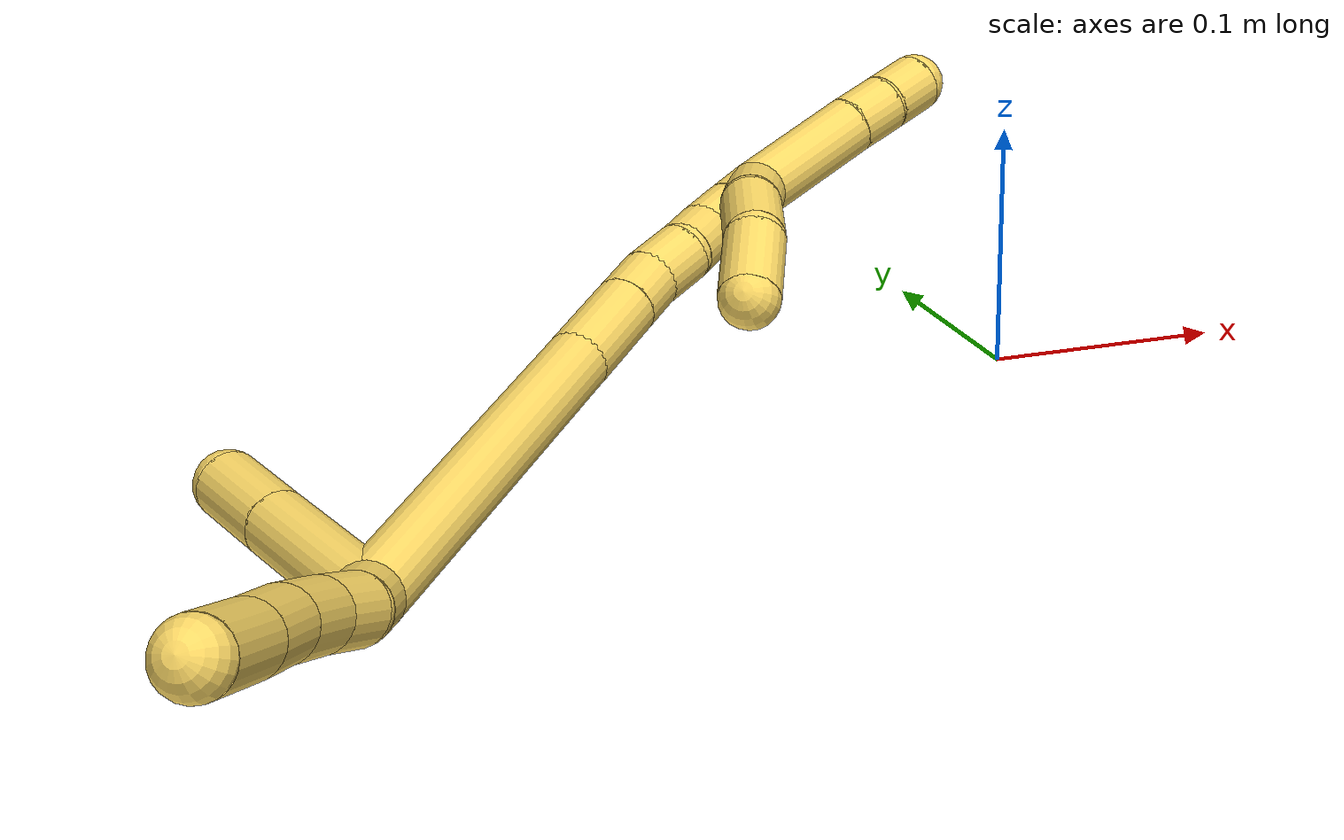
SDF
<sdf version="1.7">
 <world name="default">
  <model name="5">
   <static>0</static>
   <link name="5">
    <collision name="collision-cylinder-e_1_2_8">
     <pose>0.000566 -0.003072 0.009739 0.30557 0.055333 0.008523</pose>
     <geometry><cylinder><radius>0.0125</radius><length>0.020455</length></cylinder></geometry>
     <surface>
      <friction><ode><mu>1.16</mu><mu2>1.16</mu2><slip1>0</slip1><slip2>0</slip2></ode></friction>
      <contact><ode><kp>1e+06</kp><kd>1</kd><max_vel>0</max_vel><min_depth>0.001</min_depth></ode></contact>
     </surface>
    </collision>
    <visual name="visual-cylinder-e_1_2_8">
     <pose>0.000566 -0.003072 0.009739 0.30557 0.055333 0.008523</pose>
     <geometry><cylinder><radius>0.0125</radius><length>0.020455</length></cylinder></geometry>
     <material><ambient>1 0.858824 0.4 1</ambient></material>
    </visual>
    <collision name="collision-cylinder-e_2_8_9">
     <pose>-0.001052 -0.007465 0.031284 0.111443 -0.181714 -0.010164</pose>
     <geometry><cylinder><radius>0.0125</radius><length>0.024158</length></cylinder></geometry>
     <surface>
      <friction><ode><mu>1.16</mu><mu2>1.16</mu2><slip1>0</slip1><slip2>0</slip2></ode></friction>
      <contact><ode><kp>1e+06</kp><kd>1</kd><max_vel>0</max_vel><min_depth>0.001</min_depth></ode></contact>
     </surface>
    </collision>
    <visual name="visual-cylinder-e_2_8_9">
     <pose>-0.001052 -0.007465 0.031284 0.111443 -0.181714 -0.010164</pose>
     <geometry><cylinder><radius>0.0125</radius><length>0.024158</length></cylinder></geometry>
     <material><ambient>1 0.858824 0.4 1</ambient></material>
    </visual>
    <collision name="collision-cylinder-e_3_9_10">
     <pose>-0.003907 -0.011285 0.058633 0.159355 -0.04268 -0.003408</pose>
     <geometry><cylinder><radius>0.0125</radius><length>0.031514</length></cylinder></geometry>
     <surface>
      <friction><ode><mu>1.16</mu><mu2>1.16</mu2><slip1>0</slip1><slip2>0</slip2></ode></friction>
      <contact><ode><kp>1e+06</kp><kd>1</kd><max_vel>0</max_vel><min_depth>0.001</min_depth></ode></contact>
     </surface>
    </collision>
    <visual name="visual-cylinder-e_3_9_10">
     <pose>-0.003907 -0.011285 0.058633 0.159355 -0.04268 -0.003408</pose>
     <geometry><cylinder><radius>0.0125</radius><length>0.031514</length></cylinder></geometry>
     <material><ambient>1 0.858824 0.4 1</ambient></material>
    </visual>
    <collision name="collision-cylinder-e_4_10_11">
     <pose>-0.00428 -0.017375 0.090252 0.219856 0.018143 0.002003</pose>
     <geometry><cylinder><radius>0.0125</radius><length>0.03295</length></cylinder></geometry>
     <surface>
      <friction><ode><mu>1.16</mu><mu2>1.16</mu2><slip1>0</slip1><slip2>0</slip2></ode></friction>
      <contact><ode><kp>1e+06</kp><kd>1</kd><max_vel>0</max_vel><min_depth>0.001</min_depth></ode></contact>
     </surface>
    </collision>
    <visual name="visual-cylinder-e_4_10_11">
     <pose>-0.00428 -0.017375 0.090252 0.219856 0.018143 0.002003</pose>
     <geometry><cylinder><radius>0.0125</radius><length>0.03295</length></cylinder></geometry>
     <material><ambient>1 0.858824 0.4 1</ambient></material>
    </visual>
    <collision name="collision-cylinder-e_5_11_6">
     <pose>-0.003788 -0.024874 0.126412 0.192122 0.00946 0.000912</pose>
     <geometry><cylinder><radius>0.0125</radius><length>0.040923</length></cylinder></geometry>
     <surface>
      <friction><ode><mu>1.16</mu><mu2>1.16</mu2><slip1>0</slip1><slip2>0</slip2></ode></friction>
      <contact><ode><kp>1e+06</kp><kd>1</kd><max_vel>0</max_vel><min_depth>0.001</min_depth></ode></contact>
     </surface>
    </collision>
    <visual name="visual-cylinder-e_5_11_6">
     <pose>-0.003788 -0.024874 0.126412 0.192122 0.00946 0.000912</pose>
     <geometry><cylinder><radius>0.0125</radius><length>0.040923</length></cylinder></geometry>
     <material><ambient>1 0.858824 0.4 1</ambient></material>
    </visual>
    <collision name="collision-cylinder-e_1_2_12">
     <pose>-0.01829 0.0191 -0.016773 -2.29141 -0.62373 1.23766</pose>
     <geometry><cylinder><radius>0.0125</radius><length>0.062631</length></cylinder></geometry>
     <surface>
      <friction><ode><mu>1.16</mu><mu2>1.16</mu2><slip1>0</slip1><slip2>0</slip2></ode></friction>
      <contact><ode><kp>1e+06</kp><kd>1</kd><max_vel>0</max_vel><min_depth>0.001</min_depth></ode></contact>
     </surface>
    </collision>
    <visual name="visual-cylinder-e_1_2_12">
     <pose>-0.01829 0.0191 -0.016773 -2.29141 -0.62373 1.23766</pose>
     <geometry><cylinder><radius>0.0125</radius><length>0.062631</length></cylinder></geometry>
     <material><ambient>1 0.858824 0.4 1</ambient></material>
    </visual>
    <collision name="collision-cylinder-e_2_12_5">
     <pose>-0.047404 0.049665 -0.043571 -2.2893 -0.617827 1.22545</pose>
     <geometry><cylinder><radius>0.0125</radius><length>0.037369</length></cylinder></geometry>
     <surface>
      <friction><ode><mu>1.16</mu><mu2>1.16</mu2><slip1>0</slip1><slip2>0</slip2></ode></friction>
      <contact><ode><kp>1e+06</kp><kd>1</kd><max_vel>0</max_vel><min_depth>0.001</min_depth></ode></contact>
     </surface>
    </collision>
    <visual name="visual-cylinder-e_2_12_5">
     <pose>-0.047404 0.049665 -0.043571 -2.2893 -0.617827 1.22545</pose>
     <geometry><cylinder><radius>0.0125</radius><length>0.037369</length></cylinder></geometry>
     <material><ambient>1 0.858824 0.4 1</ambient></material>
    </visual>
    <collision name="collision-cylinder-e_1_2_13">
     <pose>0.029778 0.042512 -0.058911 -2.51649 0.38901 -1.09493</pose>
     <geometry><cylinder><radius>0.0125</radius><length>0.157029</length></cylinder></geometry>
     <surface>
      <friction><ode><mu>1.16</mu><mu2>1.16</mu2><slip1>0</slip1><slip2>0</slip2></ode></friction>
      <contact><ode><kp>1e+06</kp><kd>1</kd><max_vel>0</max_vel><min_depth>0.001</min_depth></ode></contact>
     </surface>
    </collision>
    <visual name="visual-cylinder-e_1_2_13">
     <pose>0.029778 0.042512 -0.058911 -2.51649 0.38901 -1.09493</pose>
     <geometry><cylinder><radius>0.0125</radius><length>0.157029</length></cylinder></geometry>
     <material><ambient>1 0.858824 0.4 1</ambient></material>
    </visual>
    <collision name="collision-cylinder-e_2_13_14">
     <pose>0.068386 0.096256 -0.131534 -2.45531 0.46215 -1.1647</pose>
     <geometry><cylinder><radius>0.0125</radius><length>0.039604</length></cylinder></geometry>
     <surface>
      <friction><ode><mu>1.16</mu><mu2>1.16</mu2><slip1>0</slip1><slip2>0</slip2></ode></friction>
      <contact><ode><kp>1e+06</kp><kd>1</kd><max_vel>0</max_vel><min_depth>0.001</min_depth></ode></contact>
     </surface>
    </collision>
    <visual name="visual-cylinder-e_2_13_14">
     <pose>0.068386 0.096256 -0.131534 -2.45531 0.46215 -1.1647</pose>
     <geometry><cylinder><radius>0.0125</radius><length>0.039604</length></cylinder></geometry>
     <material><ambient>1 0.858824 0.4 1</ambient></material>
    </visual>
    <collision name="collision-cylinder-e_3_14_15">
     <pose>0.081858 0.113389 -0.152573 -2.46359 0.458409 -1.16903</pose>
     <geometry><cylinder><radius>0.0125</radius><length>0.020981</length></cylinder></geometry>
     <surface>
      <friction><ode><mu>1.16</mu><mu2>1.16</mu2><slip1>0</slip1><slip2>0</slip2></ode></friction>
      <contact><ode><kp>1e+06</kp><kd>1</kd><max_vel>0</max_vel><min_depth>0.001</min_depth></ode></contact>
     </surface>
    </collision>
    <visual name="visual-cylinder-e_3_14_15">
     <pose>0.081858 0.113389 -0.152573 -2.46359 0.458409 -1.16903</pose>
     <geometry><cylinder><radius>0.0125</radius><length>0.020981</length></cylinder></geometry>
     <material><ambient>1 0.858824 0.4 1</ambient></material>
    </visual>
    <collision name="collision-cylinder-e_4_15_16">
     <pose>0.093254 0.124503 -0.166679 -2.48601 0.668393 -1.59163</pose>
     <geometry><cylinder><radius>0.0125</radius><length>0.021796</length></cylinder></geometry>
     <surface>
      <friction><ode><mu>1.16</mu><mu2>1.16</mu2><slip1>0</slip1><slip2>0</slip2></ode></friction>
      <contact><ode><kp>1e+06</kp><kd>1</kd><max_vel>0</max_vel><min_depth>0.001</min_depth></ode></contact>
     </surface>
    </collision>
    <visual name="visual-cylinder-e_4_15_16">
     <pose>0.093254 0.124503 -0.166679 -2.48601 0.668393 -1.59163</pose>
     <geometry><cylinder><radius>0.0125</radius><length>0.021796</length></cylinder></geometry>
     <material><ambient>1 0.858824 0.4 1</ambient></material>
    </visual>
    <collision name="collision-cylinder-e_5_16_17">
     <pose>0.103848 0.134672 -0.181591 -2.5944 0.383384 -1.21008</pose>
     <geometry><cylinder><radius>0.0125</radius><length>0.020537</length></cylinder></geometry>
     <surface>
      <friction><ode><mu>1.16</mu><mu2>1.16</mu2><slip1>0</slip1><slip2>0</slip2></ode></friction>
      <contact><ode><kp>1e+06</kp><kd>1</kd><max_vel>0</max_vel><min_depth>0.001</min_depth></ode></contact>
     </surface>
    </collision>
    <visual name="visual-cylinder-e_5_16_17">
     <pose>0.103848 0.134672 -0.181591 -2.5944 0.383384 -1.21008</pose>
     <geometry><cylinder><radius>0.0125</radius><length>0.020537</length></cylinder></geometry>
     <material><ambient>1 0.858824 0.4 1</ambient></material>
    </visual>
    <collision name="collision-cylinder-e_6_17_18">
     <pose>0.113337 0.144512 -0.196409 -2.51046 0.59864 -1.51449</pose>
     <geometry><cylinder><radius>0.0125</radius><length>0.020046</length></cylinder></geometry>
     <surface>
      <friction><ode><mu>1.16</mu><mu2>1.16</mu2><slip1>0</slip1><slip2>0</slip2></ode></friction>
      <contact><ode><kp>1e+06</kp><kd>1</kd><max_vel>0</max_vel><min_depth>0.001</min_depth></ode></contact>
     </surface>
    </collision>
    <visual name="visual-cylinder-e_6_17_18">
     <pose>0.113337 0.144512 -0.196409 -2.51046 0.59864 -1.51449</pose>
     <geometry><cylinder><radius>0.0125</radius><length>0.020046</length></cylinder></geometry>
     <material><ambient>1 0.858824 0.4 1</ambient></material>
    </visual>
    <collision name="collision-cylinder-e_7_18_1">
     <pose>0.124173 0.154108 -0.210233 -2.55839 0.545141 -1.49964</pose>
     <geometry><cylinder><radius>0.0125</radius><length>0.020007</length></cylinder></geometry>
     <surface>
      <friction><ode><mu>1.16</mu><mu2>1.16</mu2><slip1>0</slip1><slip2>0</slip2></ode></friction>
      <contact><ode><kp>1e+06</kp><kd>1</kd><max_vel>0</max_vel><min_depth>0.001</min_depth></ode></contact>
     </surface>
    </collision>
    <visual name="visual-cylinder-e_7_18_1">
     <pose>0.124173 0.154108 -0.210233 -2.55839 0.545141 -1.49964</pose>
     <geometry><cylinder><radius>0.0125</radius><length>0.020007</length></cylinder></geometry>
     <material><ambient>1 0.858824 0.4 1</ambient></material>
    </visual>
    <collision name="collision-cylinder-e_1_1_19">
     <pose>0.129347 0.151774 -0.202395 0.439659 -0.000811 -0.000181</pose>
     <geometry><cylinder><radius>0.0125</radius><length>0.033105</length></cylinder></geometry>
     <surface>
      <friction><ode><mu>1.16</mu><mu2>1.16</mu2><slip1>0</slip1><slip2>0</slip2></ode></friction>
      <contact><ode><kp>1e+06</kp><kd>1</kd><max_vel>0</max_vel><min_depth>0.001</min_depth></ode></contact>
     </surface>
    </collision>
    <visual name="visual-cylinder-e_1_1_19">
     <pose>0.129347 0.151774 -0.202395 0.439659 -0.000811 -0.000181</pose>
     <geometry><cylinder><radius>0.0125</radius><length>0.033105</length></cylinder></geometry>
     <material><ambient>1 0.858824 0.4 1</ambient></material>
    </visual>
    <collision name="collision-cylinder-e_2_19_20">
     <pose>0.129951 0.133983 -0.174322 0.687188 0.036429 0.013035</pose>
     <geometry><cylinder><radius>0.0125</radius><length>0.033901</length></cylinder></geometry>
     <surface>
      <friction><ode><mu>1.16</mu><mu2>1.16</mu2><slip1>0</slip1><slip2>0</slip2></ode></friction>
      <contact><ode><kp>1e+06</kp><kd>1</kd><max_vel>0</max_vel><min_depth>0.001</min_depth></ode></contact>
     </surface>
    </collision>
    <visual name="visual-cylinder-e_2_19_20">
     <pose>0.129951 0.133983 -0.174322 0.687188 0.036429 0.013035</pose>
     <geometry><cylinder><radius>0.0125</radius><length>0.033901</length></cylinder></geometry>
     <material><ambient>1 0.858824 0.4 1</ambient></material>
    </visual>
    <collision name="collision-cylinder-e_3_20_4">
     <pose>0.127883 0.10985 -0.151968 0.96566 -0.163491 -0.085843</pose>
     <geometry><cylinder><radius>0.0125</radius><length>0.032994</length></cylinder></geometry>
     <surface>
      <friction><ode><mu>1.16</mu><mu2>1.16</mu2><slip1>0</slip1><slip2>0</slip2></ode></friction>
      <contact><ode><kp>1e+06</kp><kd>1</kd><max_vel>0</max_vel><min_depth>0.001</min_depth></ode></contact>
     </surface>
    </collision>
    <visual name="visual-cylinder-e_3_20_4">
     <pose>0.127883 0.10985 -0.151968 0.96566 -0.163491 -0.085843</pose>
     <geometry><cylinder><radius>0.0125</radius><length>0.032994</length></cylinder></geometry>
     <material><ambient>1 0.858824 0.4 1</ambient></material>
    </visual>
    <collision name="collision-cylinder-e_1_1_21">
     <pose>0.150688 0.171002 -0.231102 -2.41578 0.860189 -1.75871</pose>
     <geometry><cylinder><radius>0.0125</radius><length>0.056278</length></cylinder></geometry>
     <surface>
      <friction><ode><mu>1.16</mu><mu2>1.16</mu2><slip1>0</slip1><slip2>0</slip2></ode></friction>
      <contact><ode><kp>1e+06</kp><kd>1</kd><max_vel>0</max_vel><min_depth>0.001</min_depth></ode></contact>
     </surface>
    </collision>
    <visual name="visual-cylinder-e_1_1_21">
     <pose>0.150688 0.171002 -0.231102 -2.41578 0.860189 -1.75871</pose>
     <geometry><cylinder><radius>0.0125</radius><length>0.056278</length></cylinder></geometry>
     <material><ambient>1 0.858824 0.4 1</ambient></material>
    </visual>
    <collision name="collision-cylinder-e_2_21_22">
     <pose>0.17993 0.187563 -0.250553 -2.48846 0.832226 -1.83374</pose>
     <geometry><cylinder><radius>0.0125</radius><length>0.021405</length></cylinder></geometry>
     <surface>
      <friction><ode><mu>1.16</mu><mu2>1.16</mu2><slip1>0</slip1><slip2>0</slip2></ode></friction>
      <contact><ode><kp>1e+06</kp><kd>1</kd><max_vel>0</max_vel><min_depth>0.001</min_depth></ode></contact>
     </surface>
    </collision>
    <visual name="visual-cylinder-e_2_21_22">
     <pose>0.17993 0.187563 -0.250553 -2.48846 0.832226 -1.83374</pose>
     <geometry><cylinder><radius>0.0125</radius><length>0.021405</length></cylinder></geometry>
     <material><ambient>1 0.858824 0.4 1</ambient></material>
    </visual>
    <collision name="collision-cylinder-e_3_22_3">
     <pose>0.195121 0.19662 -0.263323 -2.55565 0.710385 -1.77607</pose>
     <geometry><cylinder><radius>0.0125</radius><length>0.022317</length></cylinder></geometry>
     <surface>
      <friction><ode><mu>1.16</mu><mu2>1.16</mu2><slip1>0</slip1><slip2>0</slip2></ode></friction>
      <contact><ode><kp>1e+06</kp><kd>1</kd><max_vel>0</max_vel><min_depth>0.001</min_depth></ode></contact>
     </surface>
    </collision>
    <visual name="visual-cylinder-e_3_22_3">
     <pose>0.195121 0.19662 -0.263323 -2.55565 0.710385 -1.77607</pose>
     <geometry><cylinder><radius>0.0125</radius><length>0.022317</length></cylinder></geometry>
     <material><ambient>1 0.858824 0.4 1</ambient></material>
    </visual>
    <collision name="collision-sphere-3">
     <pose>0.202398 0.201298 -0.270372 0 -0 0</pose>
     <geometry><sphere><radius>0.0125</radius></sphere></geometry>
     <surface>
      <friction><ode><mu>1.16</mu><mu2>1.16</mu2><slip1>0</slip1><slip2>0</slip2></ode></friction>
      <contact><ode><kp>1e+06</kp><kd>1</kd><max_vel>0</max_vel><min_depth>0.001</min_depth></ode></contact>
     </surface>
    </collision>
    <visual name="visual-sphere-3">
     <pose>0.202398 0.201298 -0.270372 0 -0 0</pose>
     <geometry><sphere><radius>0.0125</radius></sphere></geometry>
     <material><ambient>1 0.858824 0.4 1</ambient></material>
    </visual>
    <collision name="collision-sphere-22">
     <pose>0.187844 0.191942 -0.256275 0 -0 0</pose>
     <geometry><sphere><radius>0.0125</radius></sphere></geometry>
     <surface>
      <friction><ode><mu>1.16</mu><mu2>1.16</mu2><slip1>0</slip1><slip2>0</slip2></ode></friction>
      <contact><ode><kp>1e+06</kp><kd>1</kd><max_vel>0</max_vel><min_depth>0.001</min_depth></ode></contact>
     </surface>
    </collision>
    <visual name="visual-sphere-22">
     <pose>0.187844 0.191942 -0.256275 0 -0 0</pose>
     <geometry><sphere><radius>0.0125</radius></sphere></geometry>
     <material><ambient>1 0.858824 0.4 1</ambient></material>
    </visual>
    <collision name="collision-sphere-21">
     <pose>0.172017 0.183185 -0.244831 0 -0 0</pose>
     <geometry><sphere><radius>0.0125</radius></sphere></geometry>
     <surface>
      <friction><ode><mu>1.16</mu><mu2>1.16</mu2><slip1>0</slip1><slip2>0</slip2></ode></friction>
      <contact><ode><kp>1e+06</kp><kd>1</kd><max_vel>0</max_vel><min_depth>0.001</min_depth></ode></contact>
     </surface>
    </collision>
    <visual name="visual-sphere-21">
     <pose>0.172017 0.183185 -0.244831 0 -0 0</pose>
     <geometry><sphere><radius>0.0125</radius></sphere></geometry>
     <material><ambient>1 0.858824 0.4 1</ambient></material>
    </visual>
    <collision name="collision-sphere-4">
     <pose>0.125198 0.096464 -0.142708 0 -0 0</pose>
     <geometry><sphere><radius>0.0125</radius></sphere></geometry>
     <surface>
      <friction><ode><mu>1.16</mu><mu2>1.16</mu2><slip1>0</slip1><slip2>0</slip2></ode></friction>
      <contact><ode><kp>1e+06</kp><kd>1</kd><max_vel>0</max_vel><min_depth>0.001</min_depth></ode></contact>
     </surface>
    </collision>
    <visual name="visual-sphere-4">
     <pose>0.125198 0.096464 -0.142708 0 -0 0</pose>
     <geometry><sphere><radius>0.0125</radius></sphere></geometry>
     <material><ambient>1 0.858824 0.4 1</ambient></material>
    </visual>
    <collision name="collision-sphere-20">
     <pose>0.130568 0.123237 -0.161227 0 -0 0</pose>
     <geometry><sphere><radius>0.0125</radius></sphere></geometry>
     <surface>
      <friction><ode><mu>1.16</mu><mu2>1.16</mu2><slip1>0</slip1><slip2>0</slip2></ode></friction>
      <contact><ode><kp>1e+06</kp><kd>1</kd><max_vel>0</max_vel><min_depth>0.001</min_depth></ode></contact>
     </surface>
    </collision>
    <visual name="visual-sphere-20">
     <pose>0.130568 0.123237 -0.161227 0 -0 0</pose>
     <geometry><sphere><radius>0.0125</radius></sphere></geometry>
     <material><ambient>1 0.858824 0.4 1</ambient></material>
    </visual>
    <collision name="collision-sphere-6">
     <pose>-0.003594 -0.028781 0.146497 0 -0 0</pose>
     <geometry><sphere><radius>0.0125</radius></sphere></geometry>
     <surface>
      <friction><ode><mu>1.16</mu><mu2>1.16</mu2><slip1>0</slip1><slip2>0</slip2></ode></friction>
      <contact><ode><kp>1e+06</kp><kd>1</kd><max_vel>0</max_vel><min_depth>0.001</min_depth></ode></contact>
     </surface>
    </collision>
    <visual name="visual-sphere-6">
     <pose>-0.003594 -0.028781 0.146497 0 -0 0</pose>
     <geometry><sphere><radius>0.0125</radius></sphere></geometry>
     <material><ambient>1 0.858824 0.4 1</ambient></material>
    </visual>
    <collision name="collision-sphere-11">
     <pose>-0.003981 -0.020968 0.106328 0 -0 0</pose>
     <geometry><sphere><radius>0.0125</radius></sphere></geometry>
     <surface>
      <friction><ode><mu>1.16</mu><mu2>1.16</mu2><slip1>0</slip1><slip2>0</slip2></ode></friction>
      <contact><ode><kp>1e+06</kp><kd>1</kd><max_vel>0</max_vel><min_depth>0.001</min_depth></ode></contact>
     </surface>
    </collision>
    <visual name="visual-sphere-11">
     <pose>-0.003981 -0.020968 0.106328 0 -0 0</pose>
     <geometry><sphere><radius>0.0125</radius></sphere></geometry>
     <material><ambient>1 0.858824 0.4 1</ambient></material>
    </visual>
    <collision name="collision-sphere-10">
     <pose>-0.004579 -0.013783 0.074176 0 -0 0</pose>
     <geometry><sphere><radius>0.0125</radius></sphere></geometry>
     <surface>
      <friction><ode><mu>1.16</mu><mu2>1.16</mu2><slip1>0</slip1><slip2>0</slip2></ode></friction>
      <contact><ode><kp>1e+06</kp><kd>1</kd><max_vel>0</max_vel><min_depth>0.001</min_depth></ode></contact>
     </surface>
    </collision>
    <visual name="visual-sphere-10">
     <pose>-0.004579 -0.013783 0.074176 0 -0 0</pose>
     <geometry><sphere><radius>0.0125</radius></sphere></geometry>
     <material><ambient>1 0.858824 0.4 1</ambient></material>
    </visual>
    <collision name="collision-sphere-9">
     <pose>-0.003234 -0.008787 0.04309 0 -0 0</pose>
     <geometry><sphere><radius>0.0125</radius></sphere></geometry>
     <surface>
      <friction><ode><mu>1.16</mu><mu2>1.16</mu2><slip1>0</slip1><slip2>0</slip2></ode></friction>
      <contact><ode><kp>1e+06</kp><kd>1</kd><max_vel>0</max_vel><min_depth>0.001</min_depth></ode></contact>
     </surface>
    </collision>
    <visual name="visual-sphere-9">
     <pose>-0.003234 -0.008787 0.04309 0 -0 0</pose>
     <geometry><sphere><radius>0.0125</radius></sphere></geometry>
     <material><ambient>1 0.858824 0.4 1</ambient></material>
    </visual>
    <collision name="collision-sphere-2">
     <geometry><sphere><radius>0.0125</radius></sphere></geometry>
     <surface>
      <friction><ode><mu>1.16</mu><mu2>1.16</mu2><slip1>0</slip1><slip2>0</slip2></ode></friction>
      <contact><ode><kp>1e+06</kp><kd>1</kd><max_vel>0</max_vel><min_depth>0.001</min_depth></ode></contact>
     </surface>
    </collision>
    <visual name="visual-sphere-2">
     <geometry><sphere><radius>0.0125</radius></sphere></geometry>
     <material><ambient>1 0.858824 0.4 1</ambient></material>
    </visual>
    <collision name="collision-sphere-19">
     <pose>0.129333 0.144729 -0.187417 0 -0 0</pose>
     <geometry><sphere><radius>0.0125</radius></sphere></geometry>
     <surface>
      <friction><ode><mu>1.16</mu><mu2>1.16</mu2><slip1>0</slip1><slip2>0</slip2></ode></friction>
      <contact><ode><kp>1e+06</kp><kd>1</kd><max_vel>0</max_vel><min_depth>0.001</min_depth></ode></contact>
     </surface>
    </collision>
    <visual name="visual-sphere-19">
     <pose>0.129333 0.144729 -0.187417 0 -0 0</pose>
     <geometry><sphere><radius>0.0125</radius></sphere></geometry>
     <material><ambient>1 0.858824 0.4 1</ambient></material>
    </visual>
    <collision name="collision-sphere-8">
     <pose>0.001131 -0.006144 0.019477 0 -0 0</pose>
     <geometry><sphere><radius>0.0125</radius></sphere></geometry>
     <surface>
      <friction><ode><mu>1.16</mu><mu2>1.16</mu2><slip1>0</slip1><slip2>0</slip2></ode></friction>
      <contact><ode><kp>1e+06</kp><kd>1</kd><max_vel>0</max_vel><min_depth>0.001</min_depth></ode></contact>
     </surface>
    </collision>
    <visual name="visual-sphere-8">
     <pose>0.001131 -0.006144 0.019477 0 -0 0</pose>
     <geometry><sphere><radius>0.0125</radius></sphere></geometry>
     <material><ambient>1 0.858824 0.4 1</ambient></material>
    </visual>
    <collision name="collision-sphere-12">
     <pose>-0.036581 0.0382 -0.033545 0 -0 0</pose>
     <geometry><sphere><radius>0.0125</radius></sphere></geometry>
     <surface>
      <friction><ode><mu>1.16</mu><mu2>1.16</mu2><slip1>0</slip1><slip2>0</slip2></ode></friction>
      <contact><ode><kp>1e+06</kp><kd>1</kd><max_vel>0</max_vel><min_depth>0.001</min_depth></ode></contact>
     </surface>
    </collision>
    <visual name="visual-sphere-12">
     <pose>-0.036581 0.0382 -0.033545 0 -0 0</pose>
     <geometry><sphere><radius>0.0125</radius></sphere></geometry>
     <material><ambient>1 0.858824 0.4 1</ambient></material>
    </visual>
    <collision name="collision-sphere-5">
     <pose>-0.058227 0.061131 -0.053596 0 -0 0</pose>
     <geometry><sphere><radius>0.0125</radius></sphere></geometry>
     <surface>
      <friction><ode><mu>1.16</mu><mu2>1.16</mu2><slip1>0</slip1><slip2>0</slip2></ode></friction>
      <contact><ode><kp>1e+06</kp><kd>1</kd><max_vel>0</max_vel><min_depth>0.001</min_depth></ode></contact>
     </surface>
    </collision>
    <visual name="visual-sphere-5">
     <pose>-0.058227 0.061131 -0.053596 0 -0 0</pose>
     <geometry><sphere><radius>0.0125</radius></sphere></geometry>
     <material><ambient>1 0.858824 0.4 1</ambient></material>
    </visual>
    <collision name="collision-sphere-13">
     <pose>0.059557 0.085025 -0.117822 0 -0 0</pose>
     <geometry><sphere><radius>0.0125</radius></sphere></geometry>
     <surface>
      <friction><ode><mu>1.16</mu><mu2>1.16</mu2><slip1>0</slip1><slip2>0</slip2></ode></friction>
      <contact><ode><kp>1e+06</kp><kd>1</kd><max_vel>0</max_vel><min_depth>0.001</min_depth></ode></contact>
     </surface>
    </collision>
    <visual name="visual-sphere-13">
     <pose>0.059557 0.085025 -0.117822 0 -0 0</pose>
     <geometry><sphere><radius>0.0125</radius></sphere></geometry>
     <material><ambient>1 0.858824 0.4 1</ambient></material>
    </visual>
    <collision name="collision-sphere-14">
     <pose>0.077216 0.107488 -0.145246 0 -0 0</pose>
     <geometry><sphere><radius>0.0125</radius></sphere></geometry>
     <surface>
      <friction><ode><mu>1.16</mu><mu2>1.16</mu2><slip1>0</slip1><slip2>0</slip2></ode></friction>
      <contact><ode><kp>1e+06</kp><kd>1</kd><max_vel>0</max_vel><min_depth>0.001</min_depth></ode></contact>
     </surface>
    </collision>
    <visual name="visual-sphere-14">
     <pose>0.077216 0.107488 -0.145246 0 -0 0</pose>
     <geometry><sphere><radius>0.0125</radius></sphere></geometry>
     <material><ambient>1 0.858824 0.4 1</ambient></material>
    </visual>
    <collision name="collision-sphere-15">
     <pose>0.0865 0.119289 -0.159899 0 -0 0</pose>
     <geometry><sphere><radius>0.0125</radius></sphere></geometry>
     <surface>
      <friction><ode><mu>1.16</mu><mu2>1.16</mu2><slip1>0</slip1><slip2>0</slip2></ode></friction>
      <contact><ode><kp>1e+06</kp><kd>1</kd><max_vel>0</max_vel><min_depth>0.001</min_depth></ode></contact>
     </surface>
    </collision>
    <visual name="visual-sphere-15">
     <pose>0.0865 0.119289 -0.159899 0 -0 0</pose>
     <geometry><sphere><radius>0.0125</radius></sphere></geometry>
     <material><ambient>1 0.858824 0.4 1</ambient></material>
    </visual>
    <collision name="collision-sphere-16">
     <pose>0.100007 0.129717 -0.173459 0 -0 0</pose>
     <geometry><sphere><radius>0.0125</radius></sphere></geometry>
     <surface>
      <friction><ode><mu>1.16</mu><mu2>1.16</mu2><slip1>0</slip1><slip2>0</slip2></ode></friction>
      <contact><ode><kp>1e+06</kp><kd>1</kd><max_vel>0</max_vel><min_depth>0.001</min_depth></ode></contact>
     </surface>
    </collision>
    <visual name="visual-sphere-16">
     <pose>0.100007 0.129717 -0.173459 0 -0 0</pose>
     <geometry><sphere><radius>0.0125</radius></sphere></geometry>
     <material><ambient>1 0.858824 0.4 1</ambient></material>
    </visual>
    <collision name="collision-sphere-17">
     <pose>0.107689 0.139626 -0.189724 0 -0 0</pose>
     <geometry><sphere><radius>0.0125</radius></sphere></geometry>
     <surface>
      <friction><ode><mu>1.16</mu><mu2>1.16</mu2><slip1>0</slip1><slip2>0</slip2></ode></friction>
      <contact><ode><kp>1e+06</kp><kd>1</kd><max_vel>0</max_vel><min_depth>0.001</min_depth></ode></contact>
     </surface>
    </collision>
    <visual name="visual-sphere-17">
     <pose>0.107689 0.139626 -0.189724 0 -0 0</pose>
     <geometry><sphere><radius>0.0125</radius></sphere></geometry>
     <material><ambient>1 0.858824 0.4 1</ambient></material>
    </visual>
    <collision name="collision-sphere-18">
     <pose>0.118986 0.149398 -0.203094 0 -0 0</pose>
     <geometry><sphere><radius>0.0125</radius></sphere></geometry>
     <surface>
      <friction><ode><mu>1.16</mu><mu2>1.16</mu2><slip1>0</slip1><slip2>0</slip2></ode></friction>
      <contact><ode><kp>1e+06</kp><kd>1</kd><max_vel>0</max_vel><min_depth>0.001</min_depth></ode></contact>
     </surface>
    </collision>
    <visual name="visual-sphere-18">
     <pose>0.118986 0.149398 -0.203094 0 -0 0</pose>
     <geometry><sphere><radius>0.0125</radius></sphere></geometry>
     <material><ambient>1 0.858824 0.4 1</ambient></material>
    </visual>
    <collision name="collision-sphere-1">
     <pose>0.12936 0.158819 -0.217373 0 -0 0</pose>
     <geometry><sphere><radius>0.0125</radius></sphere></geometry>
     <surface>
      <friction><ode><mu>1.16</mu><mu2>1.16</mu2><slip1>0</slip1><slip2>0</slip2></ode></friction>
      <contact><ode><kp>1e+06</kp><kd>1</kd><max_vel>0</max_vel><min_depth>0.001</min_depth></ode></contact>
     </surface>
    </collision>
    <visual name="visual-sphere-1">
     <pose>0.12936 0.158819 -0.217373 0 -0 0</pose>
     <geometry><sphere><radius>0.0125</radius></sphere></geometry>
     <material><ambient>1 0.858824 0.4 1</ambient></material>
    </visual>
    <inertial>
     <pose>0.059022 0.075209 -0.08902 0 -0 0</pose>
     <mass>0.75</mass>
     <inertia>
      <ixx>-8.3e-05</ixx>
      <ixy>0</ixy>
      <ixz>0</ixz>
      <iyy>-0.00027</iyy>
      <iyz>0</iyz>
      <izz>-0.000338</izz>
     </inertia>
    </inertial>
   </link>
   <pose>-0.30214 -0.163786 0.011495 1.02916 -0.300405 -0.385478</pose>
  </model>
 </world>
</sdf>
